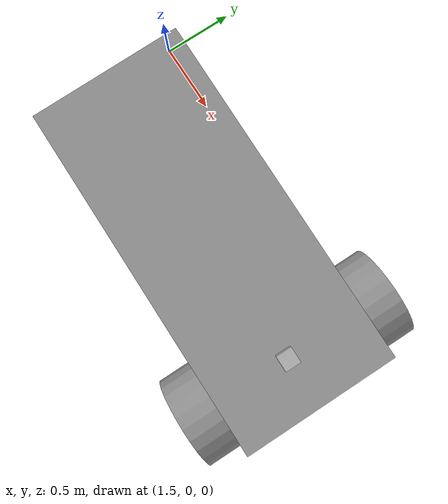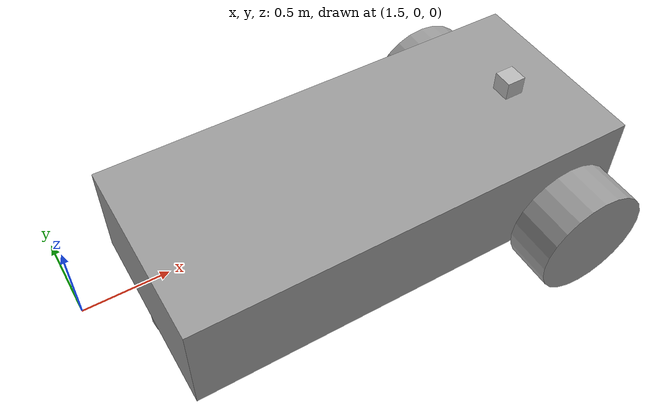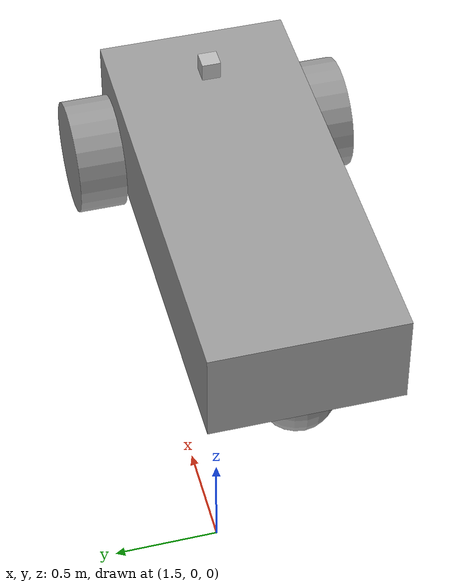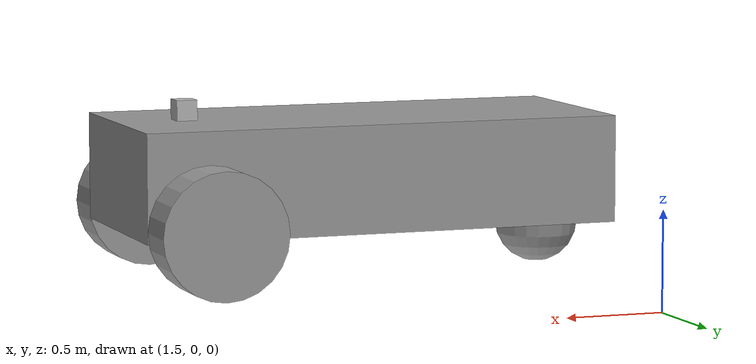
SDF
<?xml version='1.0'?>
<sdf version='1.7'>
  <model name='wheeled_robot'>
    <link name='link_0'>
      <inertial>
        <mass>1.18464</mass>
        <inertia>
          <ixx>0.124496</ixx>
          <ixy>0</ixy>
          <ixz>0</ixz>
          <iyy>0.556505</iyy>
          <iyz>0</iyz>
          <izz>0.629449</izz>
        </inertia>
        <pose>0 0 0.4 0 -0 0</pose>
      </inertial>
      <pose>2.90544 -0.518049 0.707892 0 -0 0</pose>
      <gravity>1</gravity>
      <self_collide>0</self_collide>
      <kinematic>0</kinematic>
      <enable_wind>0</enable_wind>
      <visual name='visual'>
        <pose>0 0 0 0 -0 0</pose>
        <geometry>
          <box>
            <size>2.31864 1 0.510981</size>
          </box>
        </geometry>
        <material>
          <lighting>1</lighting>
          <script>
            <uri>file://media/materials/scripts/gazebo.material</uri>
            <name>Gazebo/Grey</name>
          </script>
          <shader type='pixel'>
            <normal_map>__default__</normal_map>
          </shader>
          <ambient>0.3 0.3 0.3 1</ambient>
          <diffuse>0.7 0.7 0.7 1</diffuse>
          <specular>0.01 0.01 0.01 1</specular>
          <emissive>0 0 0 1</emissive>
        </material>
        <transparency>0</transparency>
        <cast_shadows>1</cast_shadows>
      </visual>
      <collision name='collision'>
        <laser_retro>0</laser_retro>
        <max_contacts>10</max_contacts>
        <pose>0 0 0 0 -0 0</pose>
        <geometry>
          <box>
            <size>2.31864 1 0.510981</size>
          </box>
        </geometry>
        <surface>
          <friction>
            <ode>
              <mu>1</mu>
              <mu2>1</mu2>
              <fdir1>0 0 0</fdir1>
              <slip1>0</slip1>
              <slip2>0</slip2>
            </ode>
            <torsional>
              <coefficient>1</coefficient>
              <patch_radius>0</patch_radius>
              <surface_radius>0</surface_radius>
              <use_patch_radius>1</use_patch_radius>
              <ode>
                <slip>0</slip>
              </ode>
            </torsional>
          </friction>
          <bounce>
            <restitution_coefficient>0</restitution_coefficient>
            <threshold>1e+06</threshold>
          </bounce>
          <contact>
            <collide_without_contact>0</collide_without_contact>
            <collide_without_contact_bitmask>1</collide_without_contact_bitmask>
            <collide_bitmask>1</collide_bitmask>
            <ode>
              <soft_cfm>0</soft_cfm>
              <soft_erp>0.2</soft_erp>
              <kp>1e+13</kp>
              <kd>1</kd>
              <max_vel>0.01</max_vel>
              <min_depth>0</min_depth>
            </ode>
            <bullet>
              <split_impulse>1</split_impulse>
              <split_impulse_penetration_threshold>-0.01</split_impulse_penetration_threshold>
              <soft_cfm>0</soft_cfm>
              <soft_erp>0.2</soft_erp>
              <kp>1e+13</kp>
              <kd>1</kd>
            </bullet>
          </contact>
        </surface>
      </collision>
    </link>
    <link name='link_6'>
      <inertial>
        <mass>1</mass>
        <inertia>
          <ixx>0.145833</ixx>
          <ixy>0</ixy>
          <ixz>0</ixz>
          <iyy>0.145833</iyy>
          <iyz>0</iyz>
          <izz>0.125</izz>
        </inertia>
        <pose>0 0 0 0 -0 0</pose>
      </inertial>
      <pose>3.76476 -1.14308 0.507892 1.5707 -0 0</pose>
      <gravity>1</gravity>
      <self_collide>0</self_collide>
      <kinematic>0</kinematic>
      <enable_wind>0</enable_wind>
      <visual name='visual'>
        <pose>0 0 0 0 -0 0</pose>
        <geometry>
          <cylinder>
            <radius>0.3</radius>
            <length>0.25</length>
          </cylinder>
        </geometry>
        <material>
          <lighting>1</lighting>
          <script>
            <uri>file://media/materials/scripts/gazebo.material</uri>
            <name>Gazebo/Grey</name>
          </script>
          <shader type='pixel'>
            <normal_map>__default__</normal_map>
          </shader>
          <ambient>0.3 0.3 0.3 1</ambient>
          <diffuse>0.7 0.7 0.7 1</diffuse>
          <specular>0.01 0.01 0.01 1</specular>
          <emissive>0 0 0 1</emissive>
        </material>
        <transparency>0</transparency>
        <cast_shadows>1</cast_shadows>
      </visual>
      <collision name='collision'>
        <laser_retro>0</laser_retro>
        <max_contacts>10</max_contacts>
        <pose>0 0 0 0 -0 0</pose>
        <geometry>
          <cylinder>
            <radius>0.3</radius>
            <length>0.25</length>
          </cylinder>
        </geometry>
        <surface>
          <friction>
            <ode>
              <mu>1</mu>
              <mu2>1</mu2>
              <fdir1>0 0 0</fdir1>
              <slip1>0</slip1>
              <slip2>0</slip2>
            </ode>
            <torsional>
              <coefficient>1</coefficient>
              <patch_radius>0</patch_radius>
              <surface_radius>0</surface_radius>
              <use_patch_radius>1</use_patch_radius>
              <ode>
                <slip>0</slip>
              </ode>
            </torsional>
          </friction>
          <bounce>
            <restitution_coefficient>0</restitution_coefficient>
            <threshold>1e+06</threshold>
          </bounce>
          <contact>
            <collide_without_contact>0</collide_without_contact>
            <collide_without_contact_bitmask>1</collide_without_contact_bitmask>
            <collide_bitmask>1</collide_bitmask>
            <ode>
              <soft_cfm>0</soft_cfm>
              <soft_erp>0.2</soft_erp>
              <kp>1e+13</kp>
              <kd>1</kd>
              <max_vel>0.01</max_vel>
              <min_depth>0</min_depth>
            </ode>
            <bullet>
              <split_impulse>1</split_impulse>
              <split_impulse_penetration_threshold>-0.01</split_impulse_penetration_threshold>
              <soft_cfm>0</soft_cfm>
              <soft_erp>0.2</soft_erp>
              <kp>1e+13</kp>
              <kd>1</kd>
            </bullet>
          </contact>
        </surface>
      </collision>
    </link>
    <link name='link_6_clone'>
      <inertial>
        <mass>1</mass>
        <inertia>
          <ixx>0.145833</ixx>
          <ixy>0</ixy>
          <ixz>0</ixz>
          <iyy>0.145833</iyy>
          <iyz>0</iyz>
          <izz>0.125</izz>
        </inertia>
        <pose>0 0 0 0 -0 0</pose>
      </inertial>
      <pose>3.76476 0.106982 0.507892 1.5707 -0 0</pose>
      <gravity>1</gravity>
      <self_collide>0</self_collide>
      <kinematic>0</kinematic>
      <enable_wind>0</enable_wind>
      <visual name='visual'>
        <pose>0 0 0 0 -0 0</pose>
        <geometry>
          <cylinder>
            <radius>0.3</radius>
            <length>0.25</length>
          </cylinder>
        </geometry>
        <material>
          <lighting>1</lighting>
          <script>
            <uri>file://media/materials/scripts/gazebo.material</uri>
            <name>Gazebo/Grey</name>
          </script>
          <shader type='pixel'>
            <normal_map>__default__</normal_map>
          </shader>
          <ambient>0.3 0.3 0.3 1</ambient>
          <diffuse>0.7 0.7 0.7 1</diffuse>
          <specular>0.01 0.01 0.01 1</specular>
          <emissive>0 0 0 1</emissive>
        </material>
        <transparency>0</transparency>
        <cast_shadows>1</cast_shadows>
      </visual>
      <collision name='collision'>
        <laser_retro>0</laser_retro>
        <max_contacts>10</max_contacts>
        <pose>0 0 0 0 -0 0</pose>
        <geometry>
          <cylinder>
            <radius>0.3</radius>
            <length>0.25</length>
          </cylinder>
        </geometry>
        <surface>
          <friction>
            <ode>
              <mu>1</mu>
              <mu2>1</mu2>
              <fdir1>0 0 0</fdir1>
              <slip1>0</slip1>
              <slip2>0</slip2>
            </ode>
            <torsional>
              <coefficient>1</coefficient>
              <patch_radius>0</patch_radius>
              <surface_radius>0</surface_radius>
              <use_patch_radius>1</use_patch_radius>
              <ode>
                <slip>0</slip>
              </ode>
            </torsional>
          </friction>
          <bounce>
            <restitution_coefficient>0</restitution_coefficient>
            <threshold>1e+06</threshold>
          </bounce>
          <contact>
            <collide_without_contact>0</collide_without_contact>
            <collide_without_contact_bitmask>1</collide_without_contact_bitmask>
            <collide_bitmask>1</collide_bitmask>
            <ode>
              <soft_cfm>0</soft_cfm>
              <soft_erp>0.2</soft_erp>
              <kp>1e+13</kp>
              <kd>1</kd>
              <max_vel>0.01</max_vel>
              <min_depth>0</min_depth>
            </ode>
            <bullet>
              <split_impulse>1</split_impulse>
              <split_impulse_penetration_threshold>-0.01</split_impulse_penetration_threshold>
              <soft_cfm>0</soft_cfm>
              <soft_erp>0.2</soft_erp>
              <kp>1e+13</kp>
              <kd>1</kd>
            </bullet>
          </contact>
        </surface>
      </collision>
    </link>
    <link name='link_7'>
      <inertial>
        <mass>1</mass>
        <inertia>
          <ixx>0.1</ixx>
          <ixy>0</ixy>
          <ixz>0</ixz>
          <iyy>0.1</iyy>
          <iyz>0</iyz>
          <izz>0.1</izz>
        </inertia>
        <pose>0 0 0 0 -0 0</pose>
      </inertial>
      <pose>1.94612 -0.518049 0.707892 0 -0 0</pose>
      <gravity>1</gravity>
      <self_collide>0</self_collide>
      <kinematic>0</kinematic>
      <enable_wind>0</enable_wind>
      <visual name='visual'>
        <pose>0 0 -0.3 0 -0 0</pose>
        <geometry>
          <sphere>
            <radius>0.2</radius>
          </sphere>
        </geometry>
        <material>
          <lighting>1</lighting>
          <script>
            <uri>file://media/materials/scripts/gazebo.material</uri>
            <name>Gazebo/Grey</name>
          </script>
          <shader type='pixel'>
            <normal_map>__default__</normal_map>
          </shader>
          <ambient>0.3 0.3 0.3 1</ambient>
          <diffuse>0.7 0.7 0.7 1</diffuse>
          <specular>0.01 0.01 0.01 1</specular>
          <emissive>0 0 0 1</emissive>
        </material>
        <transparency>0</transparency>
        <cast_shadows>1</cast_shadows>
      </visual>
      <collision name='collision'>
        <laser_retro>0</laser_retro>
        <max_contacts>10</max_contacts>
        <pose>0 0 -0.3 0 -0 0</pose>
        <geometry>
          <sphere>
            <radius>0.2</radius>
          </sphere>
        </geometry>
        <surface>
          <friction>
            <ode>
              <mu>1</mu>
              <mu2>1</mu2>
              <fdir1>0 0 0</fdir1>
              <slip1>0</slip1>
              <slip2>0</slip2>
            </ode>
            <torsional>
              <coefficient>1</coefficient>
              <patch_radius>0</patch_radius>
              <surface_radius>0</surface_radius>
              <use_patch_radius>1</use_patch_radius>
              <ode>
                <slip>0</slip>
              </ode>
            </torsional>
          </friction>
          <bounce>
            <restitution_coefficient>0</restitution_coefficient>
            <threshold>1e+06</threshold>
          </bounce>
          <contact>
            <collide_without_contact>0</collide_without_contact>
            <collide_without_contact_bitmask>1</collide_without_contact_bitmask>
            <collide_bitmask>1</collide_bitmask>
            <ode>
              <soft_cfm>0</soft_cfm>
              <soft_erp>0.2</soft_erp>
              <kp>1e+13</kp>
              <kd>1</kd>
              <max_vel>0.01</max_vel>
              <min_depth>0</min_depth>
            </ode>
            <bullet>
              <split_impulse>1</split_impulse>
              <split_impulse_penetration_threshold>-0.01</split_impulse_penetration_threshold>
              <soft_cfm>0</soft_cfm>
              <soft_erp>0.2</soft_erp>
              <kp>1e+13</kp>
              <kd>1</kd>
            </bullet>
          </contact>
        </surface>
      </collision>
    </link>
    <model name='camera'>
      <pose>3.73332 -0.534913 1.01066 0 -0 0</pose>
      <link name='link'>
        <inertial>
          <mass>0.1</mass>
          <inertia>
            <ixx>0.000166667</ixx>
            <iyy>0.000166667</iyy>
            <izz>0.000166667</izz>
            <ixy>0</ixy>
            <ixz>0</ixz>
            <iyz>0</iyz>
          </inertia>
        </inertial>
        <collision name='collision'>
          <geometry>
            <box>
              <size>0.1 0.1 0.1</size>
            </box>
          </geometry>
        </collision>
        <visual name='visual'>
          <geometry>
            <box>
              <size>0.1 0.1 0.1</size>
            </box>
          </geometry>
        </visual>
        <sensor name='camera' type='camera'>
          <camera>
            <horizontal_fov>1.047</horizontal_fov>
            <image>
              <width>320</width>
              <height>240</height>
            </image>
            <clip>
              <near>0.1</near>
              <far>100</far>
            </clip>
          </camera>
          <always_on>1</always_on>
          <update_rate>30</update_rate>
          <visualize>1</visualize>
        </sensor>
      </link>
    </model>
    <joint name='link_0_JOINT_1' type='revolute'>
      <parent>link_0</parent>
      <child>link_6_clone</child>
      <pose>0 0 0 0 -0 0</pose>
      <axis>
        <xyz>0 0 1</xyz>
        <limit>
          <lower>-1.79769e+308</lower>
          <upper>1.79769e+308</upper>
          <effort>-1</effort>
          <velocity>-1</velocity>
        </limit>
        <dynamics>
          <spring_reference>0</spring_reference>
          <spring_stiffness>0</spring_stiffness>
          <damping>0</damping>
        </dynamics>
      </axis>
      <physics>
        <ode>
          <limit>
            <cfm>0</cfm>
            <erp>0.2</erp>
          </limit>
          <suspension>
            <cfm>0</cfm>
            <erp>0.2</erp>
          </suspension>
        </ode>
      </physics>
    </joint>
    <joint name='link_0_JOINT_2' type='revolute'>
      <parent>link_0</parent>
      <child>link_6</child>
      <pose>0 0 0 0 -0 0</pose>
      <axis>
        <xyz>0 0 1</xyz>
        <limit>
          <lower>-1.79769e+308</lower>
          <upper>1.79769e+308</upper>
          <effort>-1</effort>
          <velocity>-1</velocity>
        </limit>
        <dynamics>
          <spring_reference>0</spring_reference>
          <spring_stiffness>0</spring_stiffness>
          <damping>0</damping>
        </dynamics>
      </axis>
      <physics>
        <ode>
          <limit>
            <cfm>0</cfm>
            <erp>0.2</erp>
          </limit>
          <suspension>
            <cfm>0</cfm>
            <erp>0.2</erp>
          </suspension>
        </ode>
      </physics>
    </joint>
    <joint name='link_0_JOINT_4' type='ball'>
      <parent>link_0</parent>
      <child>link_7</child>
      <pose>0 0 0 0 -0 0</pose>
      <physics>
        <ode>
          <limit>
            <cfm>0</cfm>
            <erp>0.2</erp>
          </limit>
          <suspension>
            <cfm>0</cfm>
            <erp>0.2</erp>
          </suspension>
        </ode>
      </physics>
    </joint>
    <joint name='link_0_JOINT_5' type='fixed'>
      <parent>link_0</parent>
      <child>camera::link</child>
      <pose>0 0 0 0 -0 0</pose>
      <physics>
        <ode>
          <limit>
            <cfm>0</cfm>
            <erp>0.2</erp>
          </limit>
          <suspension>
            <cfm>0</cfm>
            <erp>0.2</erp>
          </suspension>
        </ode>
      </physics>
    </joint>
    <static>0</static>
    <allow_auto_disable>1</allow_auto_disable>
    <plugin name='follower' filename='libFollowerPlugin.so'/>
  </model>
</sdf>
